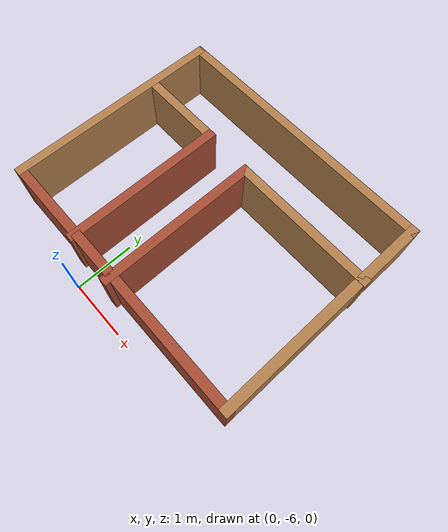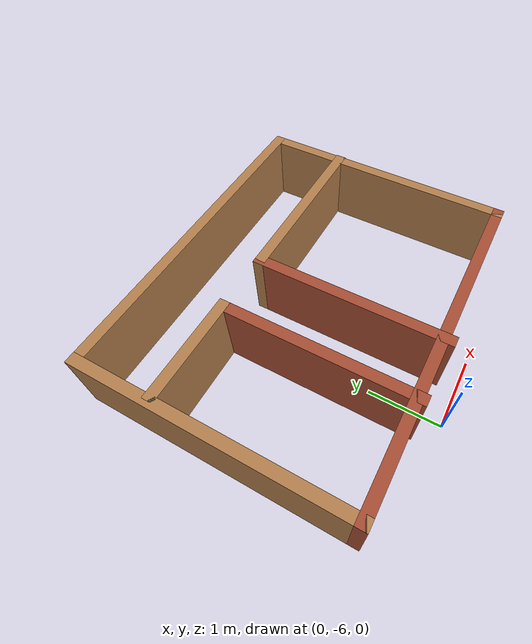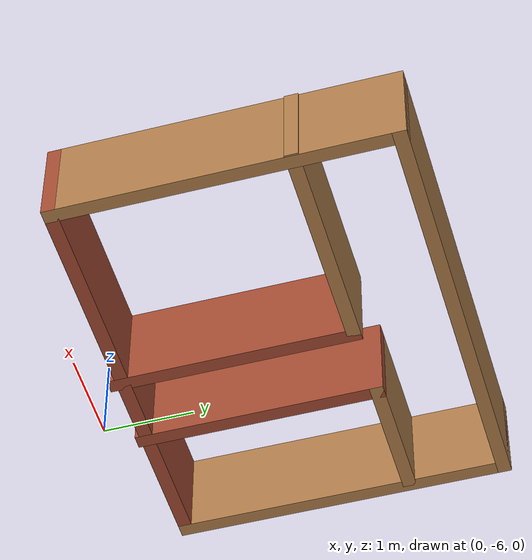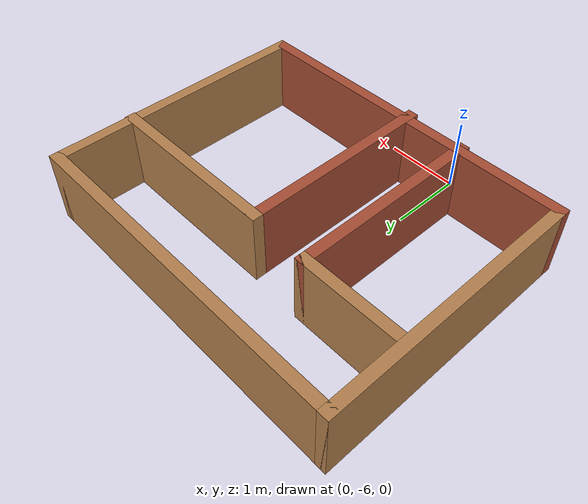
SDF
<?xml version='1.0'?>
<sdf version='1.6'>
  <model name='dang_house_1'>
    <pose frame=''>0.6265 -3.838 0 0 -0 0</pose>
    <link name='Wall_1'>
      <collision name='Wall_1_Collision'>
        <geometry>
          <box>
            <size>3.75 0.15 1</size>
          </box>
        </geometry>
        <pose frame=''>0 0 0.5 0 -0 0</pose>
      </collision>
      <visual name='Wall_1_Visual'>
        <pose frame=''>0 0 0.5 0 -0 0</pose>
        <geometry>
          <box>
            <size>3.75 0.15 1</size>
          </box>
        </geometry>
        <material>
          <script>
            <uri>file://media/materials/scripts/gazebo.material</uri>
            <name>Gazebo/Wood</name>
          </script>
          <ambient>1 1 1 1</ambient>
        </material>
        <meta>
          <layer>0</layer>
        </meta>
      </visual>
      <pose frame=''>-2.3085 0.041 0 0 -0 1.5708</pose>
    </link>
    <link name='Wall_10'>
      <collision name='Wall_10_Collision'>
        <geometry>
          <box>
            <size>2.5 0.15 1</size>
          </box>
        </geometry>
        <pose frame=''>0 0 0.5 0 -0 0</pose>
      </collision>
      <visual name='Wall_10_Visual'>
        <pose frame=''>0 0 0.5 0 -0 0</pose>
        <geometry>
          <box>
            <size>2.5 0.15 1</size>
          </box>
        </geometry>
        <material>
          <script>
            <uri>file://media/materials/scripts/gazebo.material</uri>
            <name>Gazebo/Wood</name>
          </script>
          <ambient>1 1 1 1</ambient>
        </material>
        <meta>
          <layer>0</layer>
        </meta>
      </visual>
      <pose frame=''>1.1335 0.759 0 0 -0 3.14159</pose>
    </link>
    <link name='Wall_11'>
      <collision name='Wall_11_Collision'>
        <geometry>
          <box>
            <size>2.75 0.15 1</size>
          </box>
        </geometry>
        <pose frame=''>0 0 0.5 0 -0 0</pose>
      </collision>
      <visual name='Wall_11_Visual'>
        <pose frame=''>0 0 0.5 0 -0 0</pose>
        <geometry>
          <box>
            <size>2.75 0.15 1</size>
          </box>
        </geometry>
        <material>
          <script>
            <uri>file://media/materials/scripts/gazebo.material</uri>
            <name>Gazebo/Bricks</name>
          </script>
          <ambient>1 1 1 1</ambient>
        </material>
        <meta>
          <layer>0</layer>
        </meta>
      </visual>
      <pose frame=''>-0.0415 -0.541 0 0 0 -1.5708</pose>
    </link>
    <link name='Wall_2'>
      <collision name='Wall_2_Collision'>
        <geometry>
          <box>
            <size>4.75 0.15 1</size>
          </box>
        </geometry>
        <pose frame=''>0 0 0.5 0 -0 0</pose>
      </collision>
      <visual name='Wall_2_Visual'>
        <pose frame=''>0 0 0.5 0 -0 0</pose>
        <geometry>
          <box>
            <size>4.75 0.15 1</size>
          </box>
        </geometry>
        <material>
          <script>
            <uri>file://media/materials/scripts/gazebo.material</uri>
            <name>Gazebo/Wood</name>
          </script>
          <ambient>1 1 1 1</ambient>
        </material>
        <meta>
          <layer>0</layer>
        </meta>
      </visual>
      <pose frame=''>-0.0085 1.841 0 0 -0 0</pose>
    </link>
    <link name='Wall_3'>
      <collision name='Wall_3_Collision'>
        <geometry>
          <box>
            <size>3.75 0.15 1</size>
          </box>
        </geometry>
        <pose frame=''>0 0 0.5 0 -0 0</pose>
      </collision>
      <visual name='Wall_3_Visual'>
        <pose frame=''>0 0 0.5 0 -0 0</pose>
        <geometry>
          <box>
            <size>3.75 0.15 1</size>
          </box>
        </geometry>
        <material>
          <script>
            <uri>file://media/materials/scripts/gazebo.material</uri>
            <name>Gazebo/Wood</name>
          </script>
          <ambient>1 1 1 1</ambient>
        </material>
        <meta>
          <layer>0</layer>
        </meta>
      </visual>
      <pose frame=''>2.2915 0.041 0 0 0 -1.5708</pose>
    </link>
    <link name='Wall_4'>
      <collision name='Wall_4_Collision'>
        <geometry>
          <box>
            <size>4.75 0.15 1</size>
          </box>
        </geometry>
        <pose frame=''>0 0 0.5 0 -0 0</pose>
      </collision>
      <visual name='Wall_4_Visual'>
        <pose frame=''>0 0 0.5 0 -0 0</pose>
        <geometry>
          <box>
            <size>4.75 0.15 1</size>
          </box>
        </geometry>
        <material>
          <script>
            <uri>file://media/materials/scripts/gazebo.material</uri>
            <name>Gazebo/Bricks</name>
          </script>
          <ambient>1 1 1 1</ambient>
        </material>
        <meta>
          <layer>0</layer>
        </meta>
      </visual>
      <pose frame=''>-0.0085 -1.759 0 0 -0 3.14159</pose>
    </link>
    <link name='Wall_7'>
      <collision name='Wall_7_Collision'>
        <geometry>
          <box>
            <size>1.5 0.15 1</size>
          </box>
        </geometry>
        <pose frame=''>0 0 0.5 0 -0 0</pose>
      </collision>
      <visual name='Wall_7_Visual'>
        <pose frame=''>0 0 0.5 0 -0 0</pose>
        <geometry>
          <box>
            <size>1.5 0.15 1</size>
          </box>
        </geometry>
        <material>
          <script>
            <uri>file://media/materials/scripts/gazebo.material</uri>
            <name>Gazebo/Wood</name>
          </script>
          <ambient>1 1 1 1</ambient>
        </material>
        <meta>
          <layer>0</layer>
        </meta>
      </visual>
      <pose frame=''>-1.5635 0.794 0 0 -0 0</pose>
    </link>
    <link name='Wall_8'>
      <collision name='Wall_8_Collision'>
        <geometry>
          <box>
            <size>2.75 0.15 1</size>
          </box>
        </geometry>
        <pose frame=''>0 0 0.5 0 -0 0</pose>
      </collision>
      <visual name='Wall_8_Visual'>
        <pose frame=''>0 0 0.5 0 -0 0</pose>
        <geometry>
          <box>
            <size>2.75 0.15 1</size>
          </box>
        </geometry>
        <material>
          <script>
            <uri>file://media/materials/scripts/gazebo.material</uri>
            <name>Gazebo/Bricks</name>
          </script>
          <ambient>1 1 1 1</ambient>
        </material>
        <meta>
          <layer>0</layer>
        </meta>
      </visual>
      <pose frame=''>-0.8885 -0.506 0 0 0 -1.5708</pose>
    </link>
    <static>1</static>
  </model>
</sdf>
